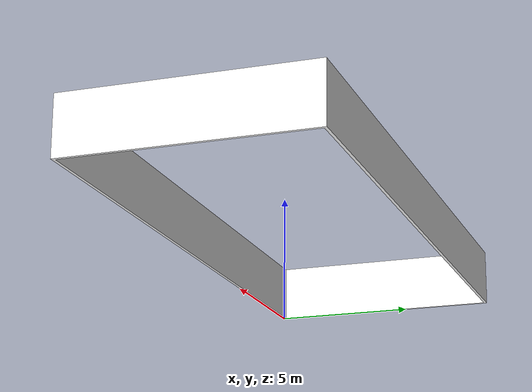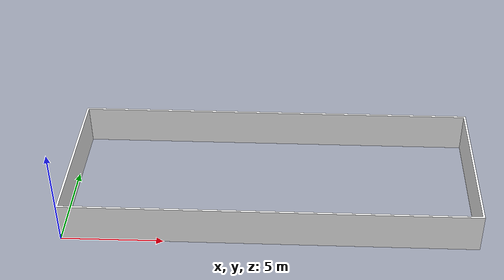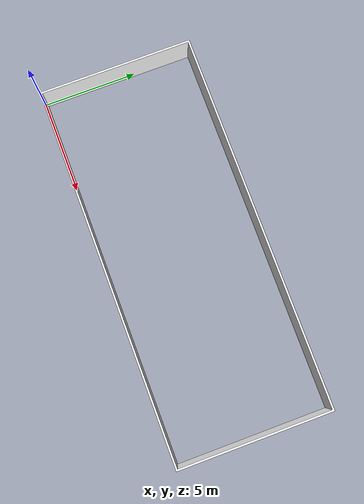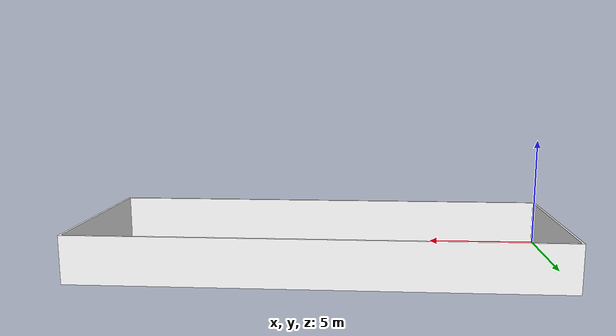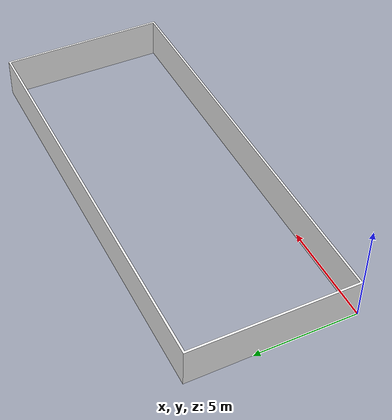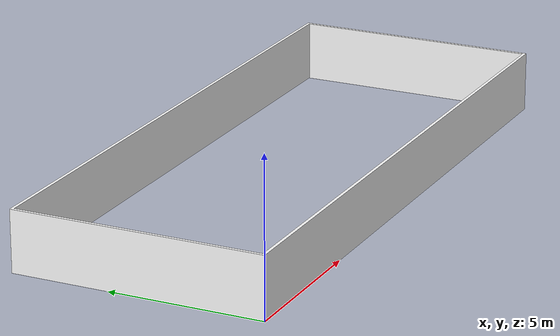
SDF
<?xml version="1.0" ?>
<sdf version="1.5">
  <model name="room_closed_20m_8m">
    <static>true</static>
    <pose>0 0 0 0 0 0</pose>
    <link name="walls">
      <collision name="collision">
        <geometry>
          <mesh>
            <uri>model://room_closed_20m_8m/meshes/room_closed_20m_8m.dae</uri>
          </mesh>
        </geometry>
      </collision>
      <visual name="visual">
        <geometry>
          <mesh>
            <uri>model://room_closed_20m_8m/meshes/room_closed_20m_8m.dae</uri>
          </mesh>
        </geometry>
        <cast_shadows>false</cast_shadows>
      </visual>
    </link>
  </model>
</sdf>
